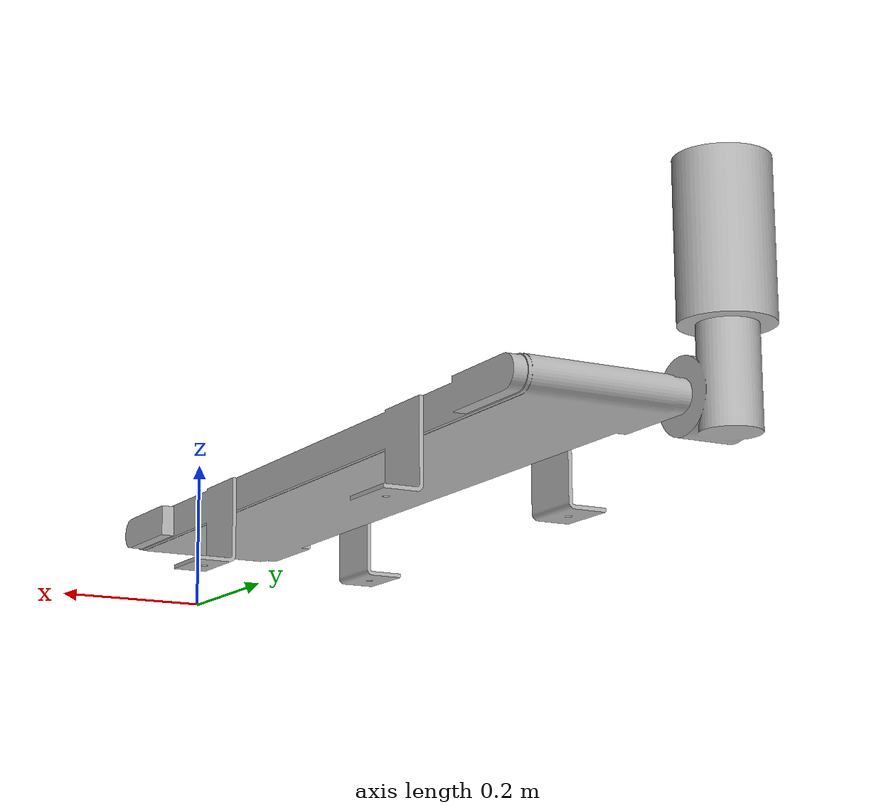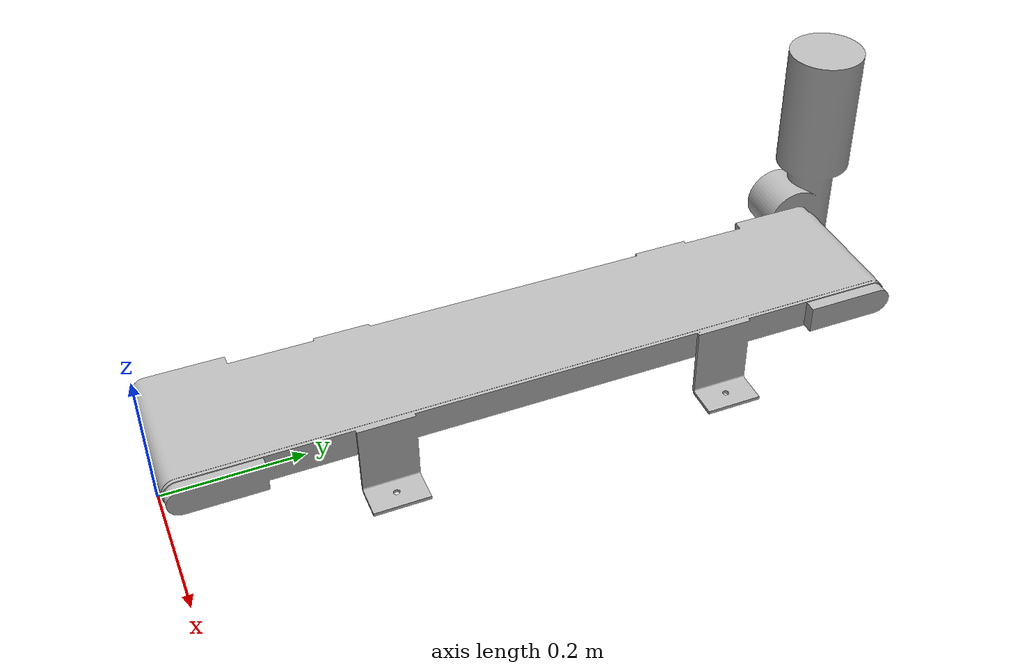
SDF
<?xml version="1.0" ?>
<sdf version="1.3">
  <model name="Conveyor_Belt">
    <static>true</static>
    <link name="link">
      <pose>0 0 0 0 0 0</pose>
      <collision name="collision">
        <geometry>
          <mesh>
            <uri>model://Conveyor_Belt/meshes/conveyor_belt.dae</uri>
          </mesh>
        </geometry>
      </collision>
      <visual name="visual">
        <geometry>
          <mesh>
            <uri>model://Conveyor_Belt/meshes/conveyor_belt.dae</uri>
          </mesh>
        </geometry>
      </visual>
    </link>
  </model>
</sdf>
